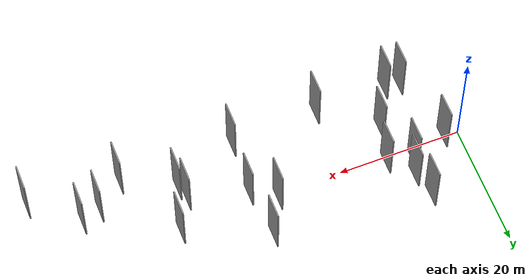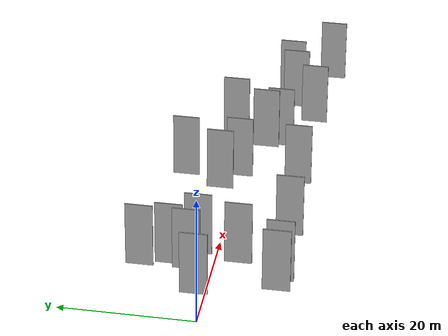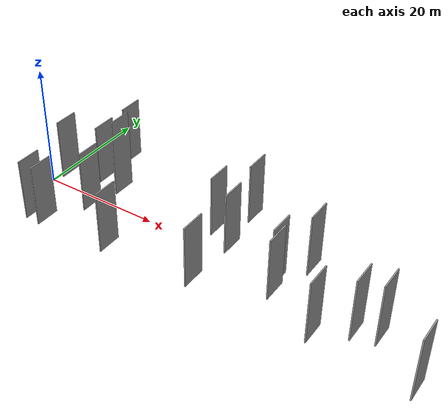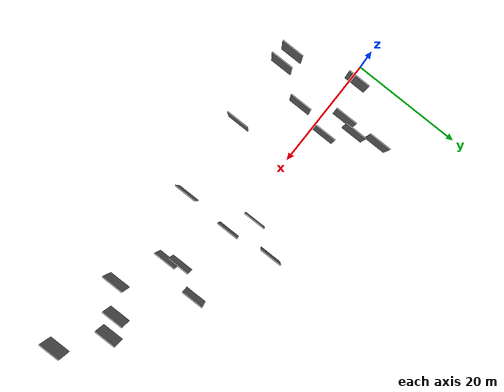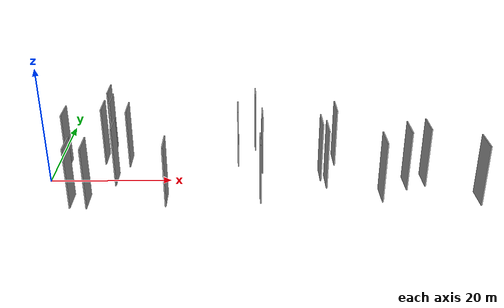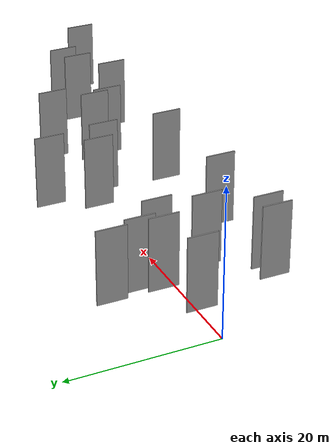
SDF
<sdf version="1.6">
 <world name="default">
  <scene>
   <sky><clouds><speed>12</speed></clouds></sky>
   <ambient>0.4 0.4 0.4 1</ambient>
   <background>0.7 0.7 0.7 1</background>
   <shadows>1</shadows>
  </scene>
  <gravity>0 0 -9.8066</gravity>
  <magnetic_field>6e-06 2.3e-05 -4.2e-05</magnetic_field>
  <physics default="0" name="default_physics" type="ode">
   <ode>
    <solver>
     <type>quick</type>
     <iters>10</iters>
     <sor>1.0</sor>
     <use_dynamic_moi_rescaling>0</use_dynamic_moi_rescaling>
    </solver>
    <constraints>
     <cfm>0</cfm>
     <erp>0.2</erp>
     <contact_max_correcting_vel>100</contact_max_correcting_vel>
     <contact_surface_layer>0.001</contact_surface_layer>
    </constraints>
   </ode>
   <max_step_size>0.004</max_step_size>
   <real_time_factor>1</real_time_factor>
   <real_time_update_rate>250</real_time_update_rate>
  </physics>
  <light name="sun" type="directional">
   <pose>0 0 10 0 0 0</pose>
   <diffuse>0.8 0.8 0.8 1</diffuse>
   <specular>0.2 0.2 0.2 1</specular>
   <attenuation>
    <range>1000</range>
    <constant>0.9</constant>
    <linear>0.01</linear>
    <quadratic>0.001</quadratic>
   </attenuation>
   <direction>-0.5 0.1 -0.9</direction>
  </light>
  <model name="grey_wall_1">
   <static>1</static>
   <pose>67.9201 -10.6584 2.5 0.000000 0.000000 1.570796</pose>
   <link name="link">
    <pose>0 0 5.00 0 0 0</pose>
    <collision name="collision"><geometry><box><size>4.00 0.2 10.00</size></box></geometry></collision>
    <visual name="visual">
     <cast_shadows>0</cast_shadows>
     <geometry><box><size>4.00 0.2 10.00</size></box></geometry>
     <material>
      <script>
       <uri>model://grey_wall/materials/scripts</uri>
       <uri>model://grey_wall/materials/textures</uri>
       <name>vrc/grey_wall</name>
      </script>
     </material>
    </visual>
   </link>
  </model>
  <model name="grey_wall_2">
   <static>1</static>
   <pose>10.1265 5.8288 2.5 0.000000 0.000000 1.570796</pose>
   <link name="link">
    <pose>0 0 5.00 0 0 0</pose>
    <collision name="collision"><geometry><box><size>4.00 0.2 10.00</size></box></geometry></collision>
    <visual name="visual">
     <cast_shadows>0</cast_shadows>
     <geometry><box><size>4.00 0.2 10.00</size></box></geometry>
     <material>
      <script>
       <uri>model://grey_wall/materials/scripts</uri>
       <uri>model://grey_wall/materials/textures</uri>
       <name>vrc/grey_wall</name>
      </script>
     </material>
    </visual>
   </link>
  </model>
  <model name="grey_wall_3">
   <static>1</static>
   <pose>9.1932 3.1714 2.5 0.000000 0.000000 1.570796</pose>
   <link name="link">
    <pose>0 0 5.00 0 0 0</pose>
    <collision name="collision"><geometry><box><size>4.00 0.2 10.00</size></box></geometry></collision>
    <visual name="visual">
     <cast_shadows>0</cast_shadows>
     <geometry><box><size>4.00 0.2 10.00</size></box></geometry>
     <material>
      <script>
       <uri>model://grey_wall/materials/scripts</uri>
       <uri>model://grey_wall/materials/textures</uri>
       <name>vrc/grey_wall</name>
      </script>
     </material>
    </visual>
   </link>
  </model>
  <model name="grey_wall_4">
   <static>1</static>
   <pose>35.2246 -0.3910 2.5 0.000000 0.000000 1.570796</pose>
   <link name="link">
    <pose>0 0 5.00 0 0 0</pose>
    <collision name="collision"><geometry><box><size>4.00 0.2 10.00</size></box></geometry></collision>
    <visual name="visual">
     <cast_shadows>0</cast_shadows>
     <geometry><box><size>4.00 0.2 10.00</size></box></geometry>
     <material>
      <script>
       <uri>model://grey_wall/materials/scripts</uri>
       <uri>model://grey_wall/materials/textures</uri>
       <name>vrc/grey_wall</name>
      </script>
     </material>
    </visual>
   </link>
  </model>
  <model name="grey_wall_5">
   <static>1</static>
   <pose>31.3119 1.9815 2.5 0.000000 0.000000 1.570796</pose>
   <link name="link">
    <pose>0 0 5.00 0 0 0</pose>
    <collision name="collision"><geometry><box><size>4.00 0.2 10.00</size></box></geometry></collision>
    <visual name="visual">
     <cast_shadows>0</cast_shadows>
     <geometry><box><size>4.00 0.2 10.00</size></box></geometry>
     <material>
      <script>
       <uri>model://grey_wall/materials/scripts</uri>
       <uri>model://grey_wall/materials/textures</uri>
       <name>vrc/grey_wall</name>
      </script>
     </material>
    </visual>
   </link>
  </model>
  <model name="grey_wall_6">
   <static>1</static>
   <pose>53.2290 -9.4617 2.5 0.000000 0.000000 1.570796</pose>
   <link name="link">
    <pose>0 0 5.00 0 0 0</pose>
    <collision name="collision"><geometry><box><size>4.00 0.2 10.00</size></box></geometry></collision>
    <visual name="visual">
     <cast_shadows>0</cast_shadows>
     <geometry><box><size>4.00 0.2 10.00</size></box></geometry>
     <material>
      <script>
       <uri>model://grey_wall/materials/scripts</uri>
       <uri>model://grey_wall/materials/textures</uri>
       <name>vrc/grey_wall</name>
      </script>
     </material>
    </visual>
   </link>
  </model>
  <model name="grey_wall_7">
   <static>1</static>
   <pose>34.6842 -9.3826 2.5 0.000000 0.000000 1.570796</pose>
   <link name="link">
    <pose>0 0 5.00 0 0 0</pose>
    <collision name="collision"><geometry><box><size>4.00 0.2 10.00</size></box></geometry></collision>
    <visual name="visual">
     <cast_shadows>0</cast_shadows>
     <geometry><box><size>4.00 0.2 10.00</size></box></geometry>
     <material>
      <script>
       <uri>model://grey_wall/materials/scripts</uri>
       <uri>model://grey_wall/materials/textures</uri>
       <name>vrc/grey_wall</name>
      </script>
     </material>
    </visual>
   </link>
  </model>
  <model name="grey_wall_8">
   <static>1</static>
   <pose>11.9442 -3.8819 2.5 0.000000 0.000000 1.570796</pose>
   <link name="link">
    <pose>0 0 5.00 0 0 0</pose>
    <collision name="collision"><geometry><box><size>4.00 0.2 10.00</size></box></geometry></collision>
    <visual name="visual">
     <cast_shadows>0</cast_shadows>
     <geometry><box><size>4.00 0.2 10.00</size></box></geometry>
     <material>
      <script>
       <uri>model://grey_wall/materials/scripts</uri>
       <uri>model://grey_wall/materials/textures</uri>
       <name>vrc/grey_wall</name>
      </script>
     </material>
    </visual>
   </link>
  </model>
  <model name="grey_wall_9">
   <static>1</static>
   <pose>9.0871 9.8974 2.5 0.000000 0.000000 1.570796</pose>
   <link name="link">
    <pose>0 0 5.00 0 0 0</pose>
    <collision name="collision"><geometry><box><size>4.00 0.2 10.00</size></box></geometry></collision>
    <visual name="visual">
     <cast_shadows>0</cast_shadows>
     <geometry><box><size>4.00 0.2 10.00</size></box></geometry>
     <material>
      <script>
       <uri>model://grey_wall/materials/scripts</uri>
       <uri>model://grey_wall/materials/textures</uri>
       <name>vrc/grey_wall</name>
      </script>
     </material>
    </visual>
   </link>
  </model>
  <model name="grey_wall_10">
   <static>1</static>
   <pose>47.2602 2.0162 2.5 0.000000 0.000000 1.570796</pose>
   <link name="link">
    <pose>0 0 5.00 0 0 0</pose>
    <collision name="collision"><geometry><box><size>4.00 0.2 10.00</size></box></geometry></collision>
    <visual name="visual">
     <cast_shadows>0</cast_shadows>
     <geometry><box><size>4.00 0.2 10.00</size></box></geometry>
     <material>
      <script>
       <uri>model://grey_wall/materials/scripts</uri>
       <uri>model://grey_wall/materials/textures</uri>
       <name>vrc/grey_wall</name>
      </script>
     </material>
    </visual>
   </link>
  </model>
  <model name="grey_wall_11">
   <static>1</static>
   <pose>13.3473 2.1331 2.5 0.000000 0.000000 1.570796</pose>
   <link name="link">
    <pose>0 0 5.00 0 0 0</pose>
    <collision name="collision"><geometry><box><size>4.00 0.2 10.00</size></box></geometry></collision>
    <visual name="visual">
     <cast_shadows>0</cast_shadows>
     <geometry><box><size>4.00 0.2 10.00</size></box></geometry>
     <material>
      <script>
       <uri>model://grey_wall/materials/scripts</uri>
       <uri>model://grey_wall/materials/textures</uri>
       <name>vrc/grey_wall</name>
      </script>
     </material>
    </visual>
   </link>
  </model>
  <model name="grey_wall_12">
   <static>1</static>
   <pose>45.1638 -5.2572 2.5 0.000000 0.000000 1.570796</pose>
   <link name="link">
    <pose>0 0 5.00 0 0 0</pose>
    <collision name="collision"><geometry><box><size>4.00 0.2 10.00</size></box></geometry></collision>
    <visual name="visual">
     <cast_shadows>0</cast_shadows>
     <geometry><box><size>4.00 0.2 10.00</size></box></geometry>
     <material>
      <script>
       <uri>model://grey_wall/materials/scripts</uri>
       <uri>model://grey_wall/materials/textures</uri>
       <name>vrc/grey_wall</name>
      </script>
     </material>
    </visual>
   </link>
  </model>
  <model name="grey_wall_13">
   <static>1</static>
   <pose>20.3739 -10.0893 2.5 0.000000 0.000000 1.570796</pose>
   <link name="link">
    <pose>0 0 5.00 0 0 0</pose>
    <collision name="collision"><geometry><box><size>4.00 0.2 10.00</size></box></geometry></collision>
    <visual name="visual">
     <cast_shadows>0</cast_shadows>
     <geometry><box><size>4.00 0.2 10.00</size></box></geometry>
     <material>
      <script>
       <uri>model://grey_wall/materials/scripts</uri>
       <uri>model://grey_wall/materials/textures</uri>
       <name>vrc/grey_wall</name>
      </script>
     </material>
    </visual>
   </link>
  </model>
  <model name="grey_wall_14">
   <static>1</static>
   <pose>6.0540 -10.2112 2.5 0.000000 0.000000 1.570796</pose>
   <link name="link">
    <pose>0 0 5.00 0 0 0</pose>
    <collision name="collision"><geometry><box><size>4.00 0.2 10.00</size></box></geometry></collision>
    <visual name="visual">
     <cast_shadows>0</cast_shadows>
     <geometry><box><size>4.00 0.2 10.00</size></box></geometry>
     <material>
      <script>
       <uri>model://grey_wall/materials/scripts</uri>
       <uri>model://grey_wall/materials/textures</uri>
       <name>vrc/grey_wall</name>
      </script>
     </material>
    </visual>
   </link>
  </model>
  <model name="grey_wall_15">
   <static>1</static>
   <pose>60.7754 -4.9797 2.5 0.000000 0.000000 1.570796</pose>
   <link name="link">
    <pose>0 0 5.00 0 0 0</pose>
    <collision name="collision"><geometry><box><size>4.00 0.2 10.00</size></box></geometry></collision>
    <visual name="visual">
     <cast_shadows>0</cast_shadows>
     <geometry><box><size>4.00 0.2 10.00</size></box></geometry>
     <material>
      <script>
       <uri>model://grey_wall/materials/scripts</uri>
       <uri>model://grey_wall/materials/textures</uri>
       <name>vrc/grey_wall</name>
      </script>
     </material>
    </visual>
   </link>
  </model>
  <model name="grey_wall_16">
   <static>1</static>
   <pose>3.2759 1.0590 2.5 0.000000 0.000000 1.570796</pose>
   <link name="link">
    <pose>0 0 5.00 0 0 0</pose>
    <collision name="collision"><geometry><box><size>4.00 0.2 10.00</size></box></geometry></collision>
    <visual name="visual">
     <cast_shadows>0</cast_shadows>
     <geometry><box><size>4.00 0.2 10.00</size></box></geometry>
     <material>
      <script>
       <uri>model://grey_wall/materials/scripts</uri>
       <uri>model://grey_wall/materials/textures</uri>
       <name>vrc/grey_wall</name>
      </script>
     </material>
    </visual>
   </link>
  </model>
  <model name="grey_wall_17">
   <static>1</static>
   <pose>44.4526 -3.0589 2.5 0.000000 0.000000 1.570796</pose>
   <link name="link">
    <pose>0 0 5.00 0 0 0</pose>
    <collision name="collision"><geometry><box><size>4.00 0.2 10.00</size></box></geometry></collision>
    <visual name="visual">
     <cast_shadows>0</cast_shadows>
     <geometry><box><size>4.00 0.2 10.00</size></box></geometry>
     <material>
      <script>
       <uri>model://grey_wall/materials/scripts</uri>
       <uri>model://grey_wall/materials/textures</uri>
       <name>vrc/grey_wall</name>
      </script>
     </material>
    </visual>
   </link>
  </model>
  <model name="grey_wall_18">
   <static>1</static>
   <pose>34.2787 7.6285 2.5 0.000000 0.000000 1.570796</pose>
   <link name="link">
    <pose>0 0 5.00 0 0 0</pose>
    <collision name="collision"><geometry><box><size>4.00 0.2 10.00</size></box></geometry></collision>
    <visual name="visual">
     <cast_shadows>0</cast_shadows>
     <geometry><box><size>4.00 0.2 10.00</size></box></geometry>
     <material>
      <script>
       <uri>model://grey_wall/materials/scripts</uri>
       <uri>model://grey_wall/materials/textures</uri>
       <name>vrc/grey_wall</name>
      </script>
     </material>
    </visual>
   </link>
  </model>
  <model name="grey_wall_19">
   <static>1</static>
   <pose>8.5747 -10.3851 2.5 0.000000 0.000000 1.570796</pose>
   <link name="link">
    <pose>0 0 5.00 0 0 0</pose>
    <collision name="collision"><geometry><box><size>4.00 0.2 10.00</size></box></geometry></collision>
    <visual name="visual">
     <cast_shadows>0</cast_shadows>
     <geometry><box><size>4.00 0.2 10.00</size></box></geometry>
     <material>
      <script>
       <uri>model://grey_wall/materials/scripts</uri>
       <uri>model://grey_wall/materials/textures</uri>
       <name>vrc/grey_wall</name>
      </script>
     </material>
    </visual>
   </link>
  </model>
  <model name="grey_wall_20">
   <static>1</static>
   <pose>57.6354 -5.9739 2.5 0.000000 0.000000 1.570796</pose>
   <link name="link">
    <pose>0 0 5.00 0 0 0</pose>
    <collision name="collision"><geometry><box><size>4.00 0.2 10.00</size></box></geometry></collision>
    <visual name="visual">
     <cast_shadows>0</cast_shadows>
     <geometry><box><size>4.00 0.2 10.00</size></box></geometry>
     <material>
      <script>
       <uri>model://grey_wall/materials/scripts</uri>
       <uri>model://grey_wall/materials/textures</uri>
       <name>vrc/grey_wall</name>
      </script>
     </material>
    </visual>
   </link>
  </model>
 </world>
</sdf>
